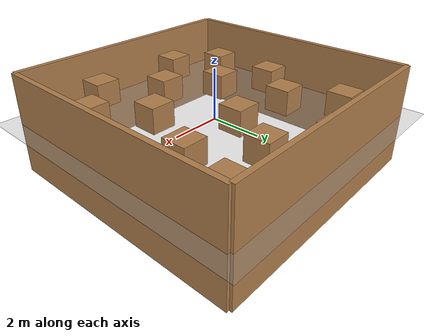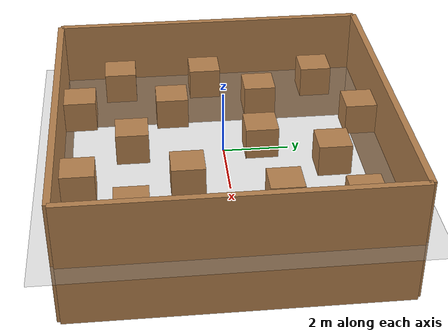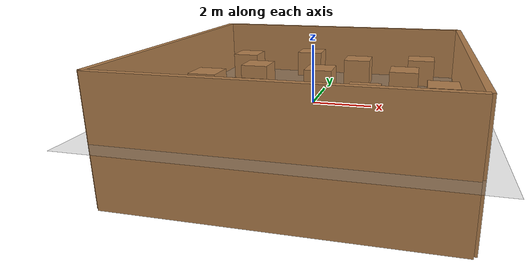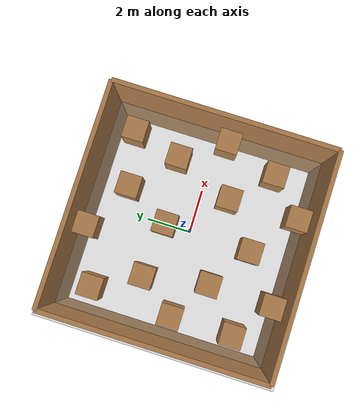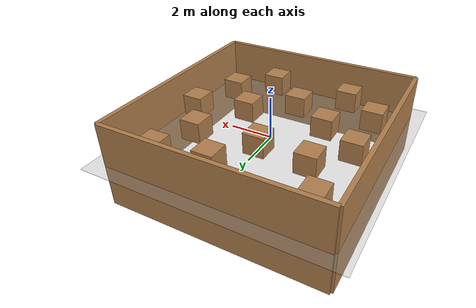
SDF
<sdf version="1.7">
 <world name="default">
  <light name="sun" type="directional">
   <pose>0 0 10 0 -0 0</pose>
   <diffuse>0.8 0.8 0.8 1</diffuse>
   <specular>0.2 0.2 0.2 1</specular>
   <attenuation>
    <range>1000</range>
    <constant>0.9</constant>
    <linear>0.01</linear>
    <quadratic>0.001</quadratic>
   </attenuation>
   <direction>0.5 0.1 -0.9</direction>
   <spot><inner_angle>0</inner_angle><outer_angle>0</outer_angle><falloff>0</falloff></spot>
  </light>
  <scene><ambient>0.4 0.4 0.4 1</ambient><background>0.7 0.7 0.7 1</background><shadows>1</shadows></scene>
  <physics name="default_physics" default="0" type="ode">
   <max_step_size>0.001</max_step_size>
   <real_time_factor>1</real_time_factor>
   <real_time_update_rate>1000</real_time_update_rate>
  </physics>
  <model name="ground_plane_0">
   <static>1</static>
   <link name="link">
    <collision name="collision">
     <geometry><plane><normal>0 0 1</normal><size>100 100</size></plane></geometry>
     <surface><friction><ode><mu>1.0</mu><mu2>0.5</mu2></ode></friction></surface>
    </collision>
    <visual name="visual">
     <cast_shadows>0</cast_shadows>
     <geometry><plane><normal>0 0 1</normal><size>100 100</size></plane></geometry>
     <material>
      <script><uri>file://media/materials/scripts/gazebo.material</uri><name>Gazebo/Gray</name></script>
     </material>
    </visual>
    <velocity_decay><linear>0</linear><angular>0</angular></velocity_decay>
   </link>
   <pose>0.497681 0 0 0 -0 0</pose>
  </model>
  <gravity>0 0 -9.8</gravity>
  <magnetic_field>6e-06 2.3e-05 -4.2e-05</magnetic_field>
  <atmosphere type="adiabatic"/>
  <spherical_coordinates>
   <surface_model>EARTH_WGS84</surface_model>
   <latitude_deg>0</latitude_deg>
   <longitude_deg>0</longitude_deg>
   <elevation>0</elevation>
   <heading_deg>0</heading_deg>
  </spherical_coordinates>
  <model name="Wall_south">
   <pose>0 -5 0 0 -0 0</pose>
   <link name="wall_north_1">
    <collision name="wall_north_1_Collision"><geometry><box><size>10 0.15 4</size></box></geometry></collision>
    <visual name="wall_north_1_Visual">
     <geometry><box><size>10 0.2 4</size></box></geometry>
     <material>
      <script><uri>file://media/materials/scripts/gazebo.material</uri><name>Gazebo/Wood</name></script>
      <ambient>1 1 1 1</ambient>
     </material>
     <meta><layer>0</layer></meta>
    </visual>
   </link>
   <static>1</static>
  </model>
  <audio><device>default</device></audio>
  <model name="Wall_north">
   <pose>0 5 0 0 -0 0</pose>
   <link name="wall_north_1">
    <collision name="wall_north_1_Collision"><geometry><box><size>10 0.15 4</size></box></geometry></collision>
    <visual name="wall_north_1_Visual">
     <geometry><box><size>10 0.2 4</size></box></geometry>
     <material>
      <script><uri>file://media/materials/scripts/gazebo.material</uri><name>Gazebo/Wood</name></script>
      <ambient>1 1 1 1</ambient>
     </material>
     <meta><layer>0</layer></meta>
    </visual>
   </link>
   <static>1</static>
  </model>
  <model name="Wall_west">
   <pose>-5 0 0 0 -0 1.57</pose>
   <link name="wall_north_1">
    <collision name="wall_north_1_Collision"><geometry><box><size>10 0.15 4</size></box></geometry></collision>
    <visual name="wall_north_1_Visual">
     <geometry><box><size>10 0.2 4</size></box></geometry>
     <material>
      <script><uri>file://media/materials/scripts/gazebo.material</uri><name>Gazebo/Wood</name></script>
      <ambient>1 1 1 1</ambient>
     </material>
     <meta><layer>0</layer></meta>
    </visual>
   </link>
   <static>1</static>
  </model>
  <model name="Wall_east">
   <pose>5 0 0 0 -0 1.57</pose>
   <link name="wall_north_1">
    <collision name="wall_north_1_Collision"><geometry><box><size>10 0.15 4</size></box></geometry></collision>
    <visual name="wall_north_1_Visual">
     <geometry><box><size>10 0.2 4</size></box></geometry>
     <material>
      <script><uri>file://media/materials/scripts/gazebo.material</uri><name>Gazebo/Wood</name></script>
      <ambient>1 1 1 1</ambient>
     </material>
     <meta><layer>0</layer></meta>
    </visual>
   </link>
   <static>1</static>
  </model>
  <model name="unit_box">
   <pose>-3.56668 3.39862 0.5 0 -0 1e-06</pose>
   <link name="link">
    <inertial>
     <mass>1</mass>
     <inertia>
      <ixx>0.166667</ixx>
      <ixy>0</ixy>
      <ixz>0</ixz>
      <iyy>0.166667</iyy>
      <iyz>0</iyz>
      <izz>0.166667</izz>
     </inertia>
    </inertial>
    <collision name="collision"><geometry><box><size>1 1 1</size></box></geometry></collision>
    <visual name="visual">
     <geometry><box><size>1 1 1</size></box></geometry>
     <material>
      <script><name>Gazebo/Wood</name><uri>file://media/materials/scripts/gazebo.material</uri></script>
     </material>
    </visual>
   </link>
   <static>1</static>
  </model>
  <model name="unit_box_clone">
   <pose>-1.06929 4.42499 0.49967 0 0.00066 2.3e-05</pose>
   <link name="link">
    <inertial>
     <mass>1</mass>
     <inertia>
      <ixx>0.166667</ixx>
      <ixy>0</ixy>
      <ixz>0</ixz>
      <iyy>0.166667</iyy>
      <iyz>0</iyz>
      <izz>0.166667</izz>
     </inertia>
    </inertial>
    <collision name="collision"><geometry><box><size>1 1 1</size></box></geometry></collision>
    <visual name="visual">
     <geometry><box><size>1 1 1</size></box></geometry>
     <material>
      <script><name>Gazebo/Wood</name><uri>file://media/materials/scripts/gazebo.material</uri></script>
     </material>
    </visual>
   </link>
   <static>1</static>
  </model>
  <model name="unit_box_clone_0">
   <pose>1.1311 3.16554 0.49967 0.00066 -0 -1e-06</pose>
   <link name="link">
    <inertial>
     <mass>1</mass>
     <inertia>
      <ixx>0.166667</ixx>
      <ixy>0</ixy>
      <ixz>0</ixz>
      <iyy>0.166667</iyy>
      <iyz>0</iyz>
      <izz>0.166667</izz>
     </inertia>
    </inertial>
    <collision name="collision"><geometry><box><size>1 1 1</size></box></geometry></collision>
    <visual name="visual">
     <geometry><box><size>1 1 1</size></box></geometry>
     <material>
      <script><name>Gazebo/Wood</name><uri>file://media/materials/scripts/gazebo.material</uri></script>
     </material>
    </visual>
   </link>
  </model>
  <model name="unit_box_clone_1">
   <pose>3.58477 3.64539 0.49907 0.0001 -0 1e-06</pose>
   <link name="link">
    <inertial>
     <mass>1</mass>
     <inertia>
      <ixx>0.166667</ixx>
      <ixy>0</ixy>
      <ixz>0</ixz>
      <iyy>0.166667</iyy>
      <iyz>0</iyz>
      <izz>0.166667</izz>
     </inertia>
    </inertial>
    <collision name="collision"><geometry><box><size>1 1 1</size></box></geometry></collision>
    <visual name="visual">
     <geometry><box><size>1 1 1</size></box></geometry>
     <material>
      <script><name>Gazebo/Wood</name><uri>file://media/materials/scripts/gazebo.material</uri></script>
     </material>
    </visual>
   </link>
   <static>1</static>
  </model>
  <model name="unit_box_clone_2">
   <pose>-2.47461 1.38119 0.49907 -0.0001 -0 -1e-06</pose>
   <link name="link">
    <inertial>
     <mass>1</mass>
     <inertia>
      <ixx>0.166667</ixx>
      <ixy>0</ixy>
      <ixz>0</ixz>
      <iyy>0.166667</iyy>
      <iyz>0</iyz>
      <izz>0.166667</izz>
     </inertia>
    </inertial>
    <collision name="collision"><geometry><box><size>1 1 1</size></box></geometry></collision>
    <visual name="visual">
     <geometry><box><size>1 1 1</size></box></geometry>
     <material>
      <script><name>Gazebo/Wood</name><uri>file://media/materials/scripts/gazebo.material</uri></script>
     </material>
    </visual>
   </link>
   <static>1</static>
  </model>
  <model name="unit_box_clone_3">
   <pose>-3.77657 -0.296939 0.49967 0 -0.00066 -3e-06</pose>
   <link name="link">
    <inertial>
     <mass>1</mass>
     <inertia>
      <ixx>0.166667</ixx>
      <ixy>0</ixy>
      <ixz>0</ixz>
      <iyy>0.166667</iyy>
      <iyz>0</iyz>
      <izz>0.166667</izz>
     </inertia>
    </inertial>
    <collision name="collision"><geometry><box><size>1 1 1</size></box></geometry></collision>
    <visual name="visual">
     <geometry><box><size>1 1 1</size></box></geometry>
     <material>
      <script><name>Gazebo/Wood</name><uri>file://media/materials/scripts/gazebo.material</uri></script>
     </material>
    </visual>
   </link>
   <static>1</static>
  </model>
  <model name="unit_box_clone_4">
   <pose>0.00537 1.13685 0.49907 -0.0001 -0 -1e-06</pose>
   <link name="link">
    <inertial>
     <mass>1</mass>
     <inertia>
      <ixx>0.166667</ixx>
      <ixy>0</ixy>
      <ixz>0</ixz>
      <iyy>0.166667</iyy>
      <iyz>0</iyz>
      <izz>0.166667</izz>
     </inertia>
    </inertial>
    <collision name="collision"><geometry><box><size>1 1 1</size></box></geometry></collision>
    <visual name="visual">
     <geometry><box><size>1 1 1</size></box></geometry>
     <material>
      <script><name>Gazebo/Wood</name><uri>file://media/materials/scripts/gazebo.material</uri></script>
     </material>
    </visual>
   </link>
   <static>1</static>
  </model>
  <model name="unit_box_clone_5">
   <pose>3.00684 1.45225 0.49907 0.0001 -0 1e-06</pose>
   <link name="link">
    <inertial>
     <mass>1</mass>
     <inertia>
      <ixx>0.166667</ixx>
      <ixy>0</ixy>
      <ixz>0</ixz>
      <iyy>0.166667</iyy>
      <iyz>0</iyz>
      <izz>0.166667</izz>
     </inertia>
    </inertial>
    <collision name="collision"><geometry><box><size>1 1 1</size></box></geometry></collision>
    <visual name="visual">
     <geometry><box><size>1 1 1</size></box></geometry>
     <material>
      <script><name>Gazebo/Wood</name><uri>file://media/materials/scripts/gazebo.material</uri></script>
     </material>
    </visual>
   </link>
   <static>1</static>
  </model>
  <model name="unit_box_clone_6">
   <pose>1.88434 -1.23562 0.49907 -0.0001 -0 -1e-06</pose>
   <link name="link">
    <inertial>
     <mass>1</mass>
     <inertia>
      <ixx>0.166667</ixx>
      <ixy>0</ixy>
      <ixz>0</ixz>
      <iyy>0.166667</iyy>
      <iyz>0</iyz>
      <izz>0.166667</izz>
     </inertia>
    </inertial>
    <collision name="collision"><geometry><box><size>1 1 1</size></box></geometry></collision>
    <visual name="visual">
     <geometry><box><size>1 1 1</size></box></geometry>
     <material>
      <script><name>Gazebo/Wood</name><uri>file://media/materials/scripts/gazebo.material</uri></script>
     </material>
    </visual>
   </link>
   <static>1</static>
  </model>
  <model name="unit_box_clone_7">
   <pose>-1.96977 -1.48246 0.49907 0.0001 -0 1e-06</pose>
   <link name="link">
    <inertial>
     <mass>1</mass>
     <inertia>
      <ixx>0.166667</ixx>
      <ixy>0</ixy>
      <ixz>0</ixz>
      <iyy>0.166667</iyy>
      <iyz>0</iyz>
      <izz>0.166667</izz>
     </inertia>
    </inertial>
    <collision name="collision"><geometry><box><size>1 1 1</size></box></geometry></collision>
    <visual name="visual">
     <geometry><box><size>1 1 1</size></box></geometry>
     <material>
      <script><name>Gazebo/Wood</name><uri>file://media/materials/scripts/gazebo.material</uri></script>
     </material>
    </visual>
   </link>
   <static>1</static>
  </model>
  <model name="unit_box_clone_8">
   <pose>4.28928 -0.468962 0.499802 0.000397 0 -1e-06</pose>
   <link name="link">
    <inertial>
     <mass>1</mass>
     <inertia>
      <ixx>0.166667</ixx>
      <ixy>0</ixy>
      <ixz>0</ixz>
      <iyy>0.166667</iyy>
      <iyz>0</iyz>
      <izz>0.166667</izz>
     </inertia>
    </inertial>
    <collision name="collision"><geometry><box><size>1 1 1</size></box></geometry></collision>
    <visual name="visual">
     <geometry><box><size>1 1 1</size></box></geometry>
     <material>
      <script><name>Gazebo/Wood</name><uri>file://media/materials/scripts/gazebo.material</uri></script>
     </material>
    </visual>
   </link>
   <static>1</static>
  </model>
  <model name="unit_box_clone_9">
   <pose>-3.75866 -3.08816 0.49967 0.00066 -0 0</pose>
   <link name="link">
    <inertial>
     <mass>1</mass>
     <inertia>
      <ixx>0.166667</ixx>
      <ixy>0</ixy>
      <ixz>0</ixz>
      <iyy>0.166667</iyy>
      <iyz>0</iyz>
      <izz>0.166667</izz>
     </inertia>
    </inertial>
    <collision name="collision"><geometry><box><size>1 1 1</size></box></geometry></collision>
    <visual name="visual">
     <geometry><box><size>1 1 1</size></box></geometry>
     <material>
      <script><name>Gazebo/Wood</name><uri>file://media/materials/scripts/gazebo.material</uri></script>
     </material>
    </visual>
   </link>
   <static>1</static>
  </model>
  <model name="unit_box_clone_10">
   <pose>-0.053545 -2.7954 0.49907 -0.0001 -0 -1e-06</pose>
   <link name="link">
    <inertial>
     <mass>1</mass>
     <inertia>
      <ixx>0.166667</ixx>
      <ixy>0</ixy>
      <ixz>0</ixz>
      <iyy>0.166667</iyy>
      <iyz>0</iyz>
      <izz>0.166667</izz>
     </inertia>
    </inertial>
    <collision name="collision"><geometry><box><size>1 1 1</size></box></geometry></collision>
    <visual name="visual">
     <geometry><box><size>1 1 1</size></box></geometry>
     <material>
      <script><name>Gazebo/Wood</name><uri>file://media/materials/scripts/gazebo.material</uri></script>
     </material>
    </visual>
   </link>
   <static>1</static>
  </model>
  <model name="unit_box_clone_11">
   <pose>3.49606 -2.87953 0.49967 -0.00066 -0 1e-06</pose>
   <link name="link">
    <inertial>
     <mass>1</mass>
     <inertia>
      <ixx>0.166667</ixx>
      <ixy>0</ixy>
      <ixz>0</ixz>
      <iyy>0.166667</iyy>
      <iyz>0</iyz>
      <izz>0.166667</izz>
     </inertia>
    </inertial>
    <collision name="collision"><geometry><box><size>1 1 1</size></box></geometry></collision>
    <visual name="visual">
     <geometry><box><size>1 1 1</size></box></geometry>
     <material>
      <script><name>Gazebo/Wood</name><uri>file://media/materials/scripts/gazebo.material</uri></script>
     </material>
    </visual>
   </link>
   <static>1</static>
  </model>
  <model name="unit_box_clone_12">
   <pose>-2.06105 -4.3981 0.49967 0.00066 -0 -1e-06</pose>
   <link name="link">
    <inertial>
     <mass>1</mass>
     <inertia>
      <ixx>0.166667</ixx>
      <ixy>0</ixy>
      <ixz>0</ixz>
      <iyy>0.166667</iyy>
      <iyz>0</iyz>
      <izz>0.166667</izz>
     </inertia>
    </inertial>
    <collision name="collision"><geometry><box><size>1 1 1</size></box></geometry></collision>
    <visual name="visual">
     <geometry><box><size>1 1 1</size></box></geometry>
     <material>
      <script><name>Gazebo/Wood</name><uri>file://media/materials/scripts/gazebo.material</uri></script>
     </material>
    </visual>
   </link>
   <static>1</static>
  </model>
  <model name="unit_box_clone_13">
   <pose>1.92796 -4.38978 0.49907 0.0001 -0 1e-06</pose>
   <link name="link">
    <inertial>
     <mass>1</mass>
     <inertia>
      <ixx>0.166667</ixx>
      <ixy>0</ixy>
      <ixz>0</ixz>
      <iyy>0.166667</iyy>
      <iyz>0</iyz>
      <izz>0.166667</izz>
     </inertia>
    </inertial>
    <collision name="collision"><geometry><box><size>1 1 1</size></box></geometry></collision>
    <visual name="visual">
     <geometry><box><size>1 1 1</size></box></geometry>
     <material>
      <script><name>Gazebo/Wood</name><uri>file://media/materials/scripts/gazebo.material</uri></script>
     </material>
    </visual>
   </link>
   <static>1</static>
  </model>
 </world>
</sdf>
